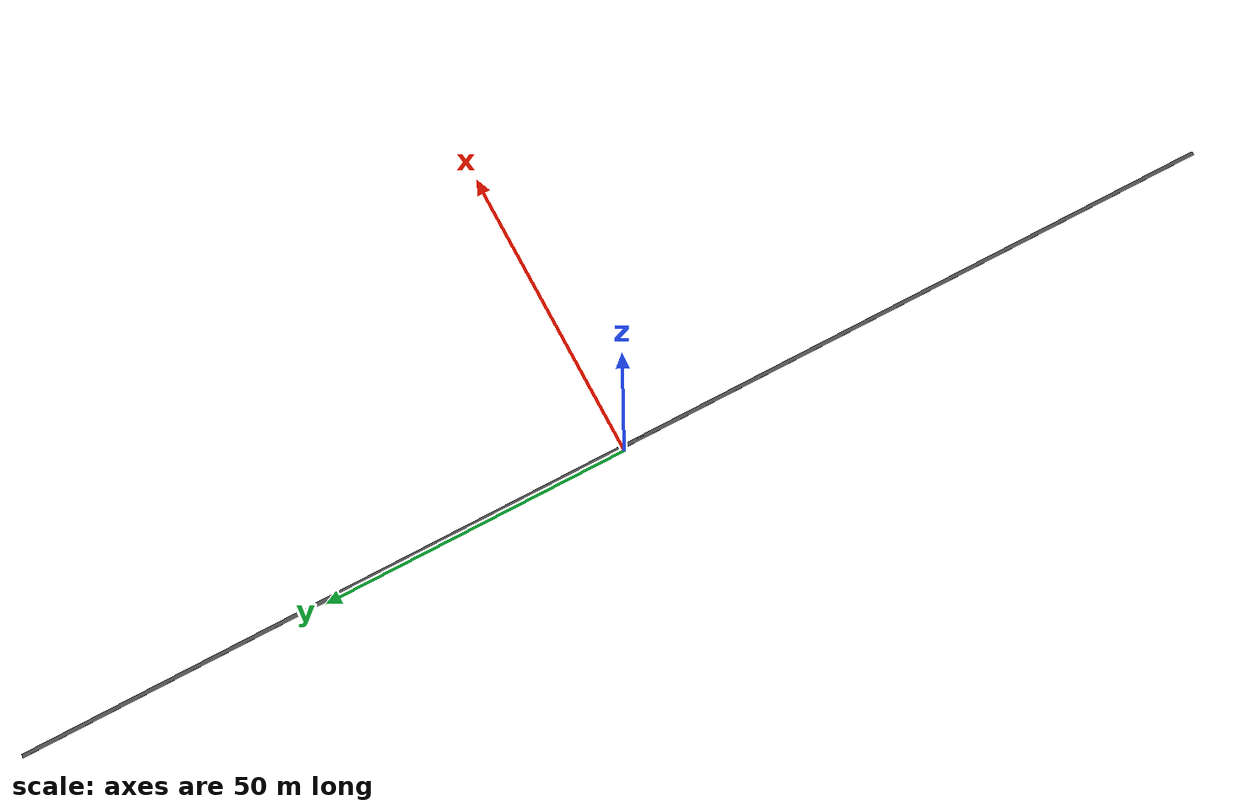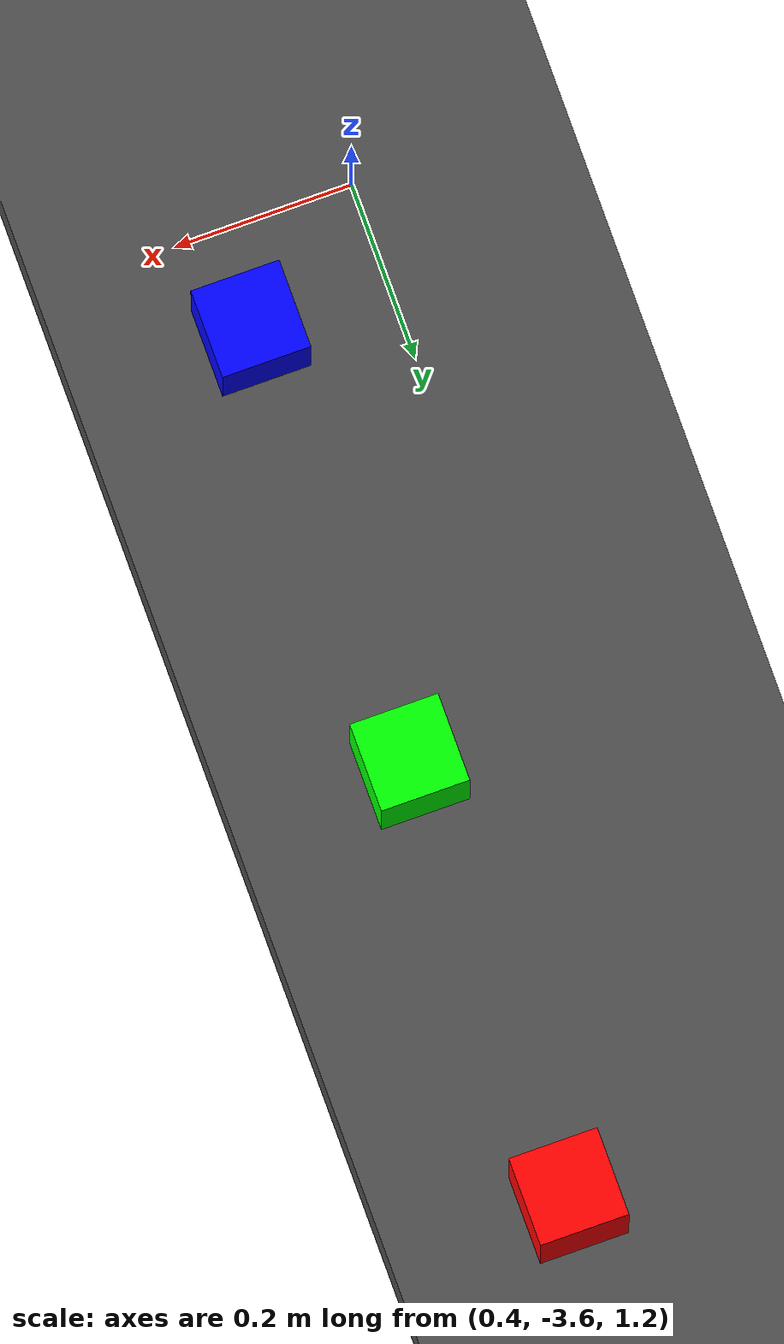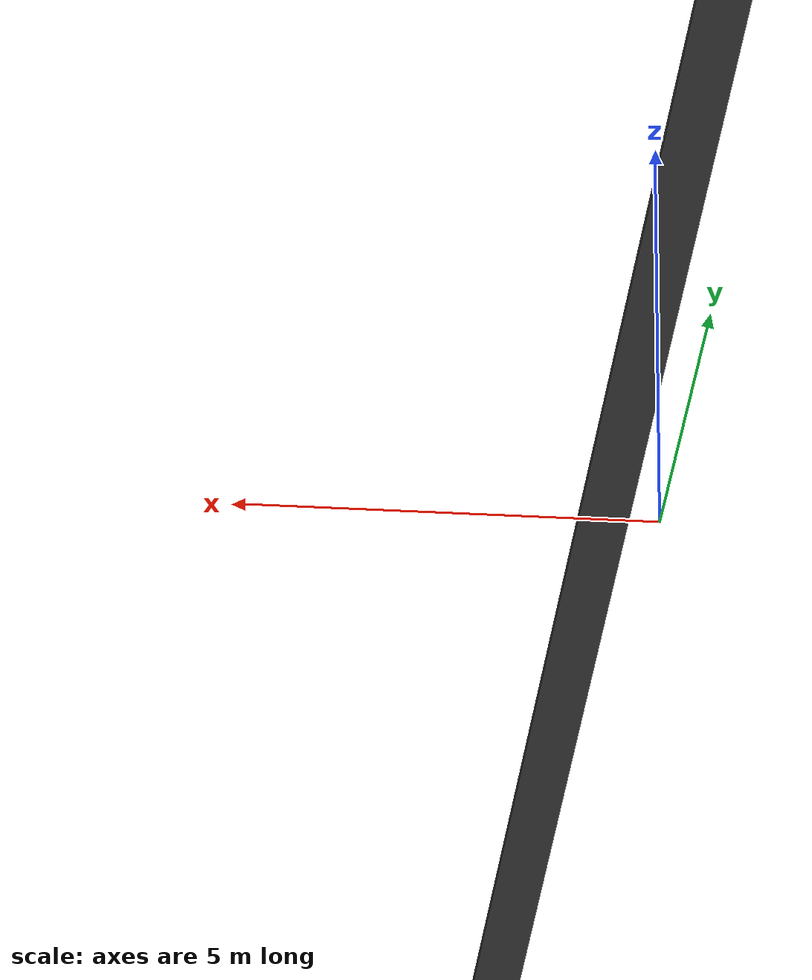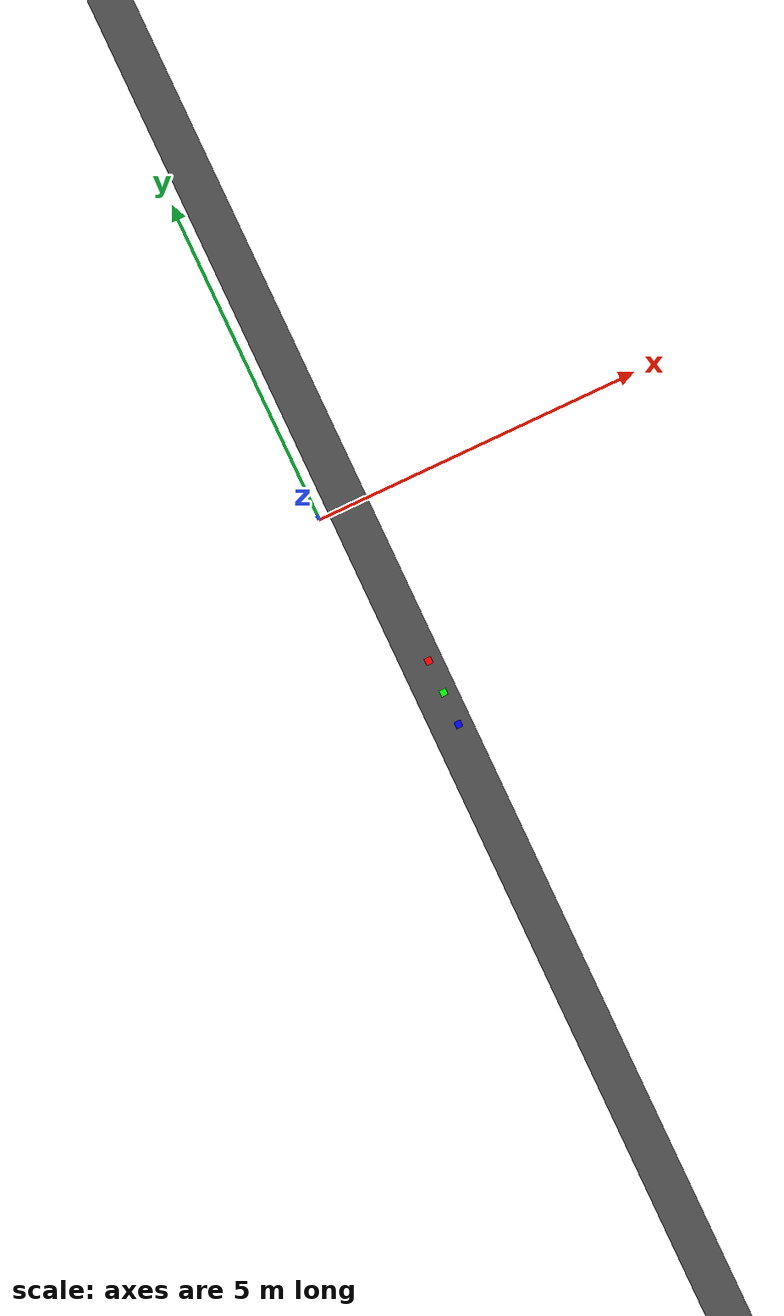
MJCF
<mujoco model="conveyor_belt">

  <worldbody>
    <body name="conveyor" pos="0.45  -2.0 1.05">
      <joint name="conveyor_linear" type="slide" axis="0 1 0" solreflimit=".08 1" damping="5e-4"/>
      <geom name="belt" type="box" size="0.3 100.0 0.04"  mass="1000" rgba="0.3 0.3 0.3 1" friction="1.0 1.0 1.0"
      solimp="0.95 0.9999 0.001 0.5 2.0" solref="0.004 1.0" priority="1"/>
    </body>

    <body name="target_box_1" pos="0.55 -2.5 1.15" quat="1 0 0 0">
      <geom name="target_box_1_geom" type="box" size="0.05 0.05 0.05" rgba="1 0 0 1" mass="0.5"
            friction="0.8 0.01 0.01"/>
      <joint name="target_box_1_joint" type="free"/>
    </body>

    <body name="target_box_2" pos="0.55 -3.0 1.15" quat="1 0 0 0">
      <geom name="target_box_2_geom" type="box" size="0.05 0.05 0.05" rgba="0 1 0 1" mass="0.5"
            friction="0.8 0.01 0.01"/>
      <joint name="target_box_2_joint" type="free"/>
    </body>

    <body name="target_box_3" pos="0.55 -3.5 1.15" quat="1 0 0 0">
      <geom name="target_box_3_geom" type="box" size="0.05 0.05 0.05" rgba="0 0 1 1" mass="0.5"
            friction="0.8 0.01 0.01"/>
      <joint name="target_box_3_joint" type="free"/>
    </body>

  </worldbody>
    <actuator>
        <velocity name="slide" joint="conveyor_linear" kv="10000" ctrllimited="true" ctrlrange="-1 1"/>
    </actuator>
</mujoco>
